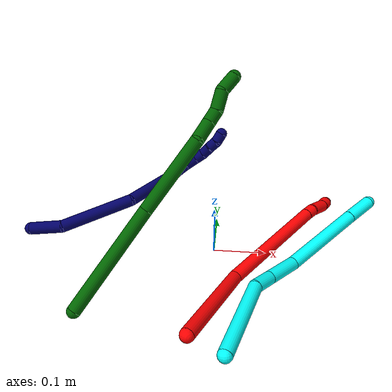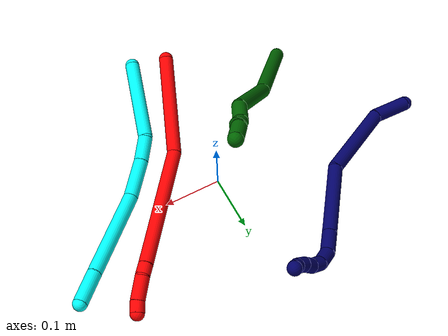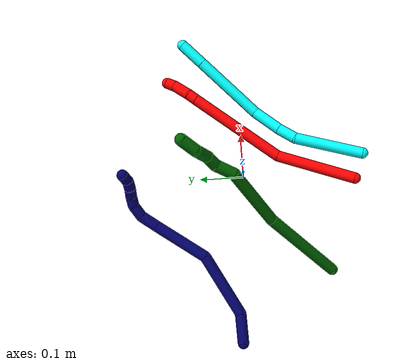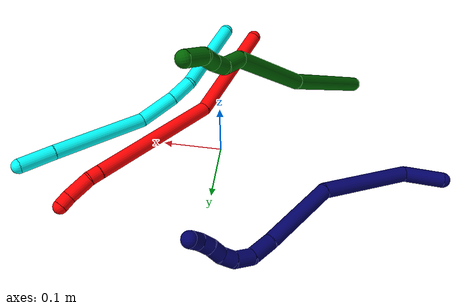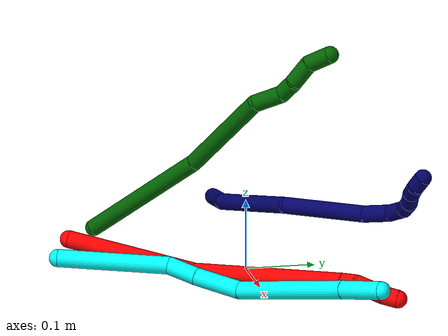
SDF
<sdf version="1.7">
 <world name="default">
  <model name="photoneo_s_sensor">
   <static>1</static>
   <pose>0 0 2 1.57079 1.57079 3.14159</pose>
   <link name="link">
    <inertial><mass>0.1</mass></inertial>
    <sensor name="sensor" type="depth">
     <update_rate>30</update_rate>
     <camera>
      <horizontal_fov>1.22</horizontal_fov>
      <image><width>1920</width><height>1200</height><format>B8G8R8</format></image>
      <clip><near>0.1</near><far>4</far></clip>
      <depth_camera><output>points</output></depth_camera>
     </camera>
     <plugin name="camera_plugin" filename="libgazebo_ros_depth_camera.so">
      <baseline>0.2</baseline>
      <alwaysOn>1</alwaysOn>
      <updateRate>0.0</updateRate>
      <cameraName>camera_ir</cameraName>
      <imageTopicName>/camera/color/image_raw</imageTopicName>
      <cameraInfoTopicName>/camera/color/camera_info</cameraInfoTopicName>
      <depthImageTopicName>/camera/depth/image_raw</depthImageTopicName>
      <depthImageCameraInfoTopicName>/camera/depth/camera_info</depthImageCameraInfoTopicName>
      <pointCloudTopicName>/camera/depth/points</pointCloudTopicName>
      <frameName>fr_optical</frameName>
      <pointCloudCutoff>0.1</pointCloudCutoff>
      <pointCloudCutoffMax>2.0</pointCloudCutoffMax>
      <distortionK1>0</distortionK1>
      <distortionK2>0</distortionK2>
      <distortionK3>0</distortionK3>
      <distortionT1>0</distortionT1>
      <distortionT2>0</distortionT2>
      <CxPrime>0</CxPrime>
      <Cx>0</Cx>
      <Cy>0</Cy>
      <focalLength>0</focalLength>
      <hackBaseline>0</hackBaseline>
     </plugin>
    </sensor>
   </link>
  </model>
  <model name="bin">
   <static>1</static>
   <link name="bottom">
    <collision name="collision-bottom">
     <pose>0 0 -0.01 0 -0 0</pose>
     <geometry><box><size>0.8 0.6 0.02</size></box></geometry>
     <surface>
      <friction><ode><mu>100</mu><mu2>100</mu2></ode></friction>
      <contact><collide_bitmask>65535</collide_bitmask></contact>
     </surface>
    </collision>
   </link>
   <link name="west_wall">
    <collision name="collision-west_wall">
     <pose>-0.41 0 0.1 0 -0 0</pose>
     <geometry><box><size>0.02 0.6 0.2</size></box></geometry>
     <surface>
      <friction><ode><mu>100</mu><mu2>100</mu2></ode></friction>
      <contact><collide_bitmask>65535</collide_bitmask></contact>
     </surface>
    </collision>
   </link>
   <link name="east_wall">
    <collision name="collision-east_wall">
     <pose>0.41 0 0.1 0 -0 0</pose>
     <geometry><box><size>0.02 0.6 0.2</size></box></geometry>
     <surface>
      <friction><ode><mu>100</mu><mu2>100</mu2></ode></friction>
      <contact><collide_bitmask>65535</collide_bitmask></contact>
     </surface>
    </collision>
   </link>
   <link name="south_wall">
    <collision name="collision-south_wall">
     <pose>0 -0.31 0.1 0 -0 0</pose>
     <geometry><box><size>0.8 0.02 0.2</size></box></geometry>
     <surface>
      <friction><ode><mu>100</mu><mu2>100</mu2></ode></friction>
      <contact><collide_bitmask>65535</collide_bitmask></contact>
     </surface>
    </collision>
   </link>
   <link name="north_wall">
    <collision name="collision-north_wall">
     <pose>0 0.31 0.1 0 -0 0</pose>
     <geometry><box><size>0.8 0.02 0.2</size></box></geometry>
     <surface>
      <friction><ode><mu>100</mu><mu2>100</mu2></ode></friction>
      <contact><collide_bitmask>65535</collide_bitmask></contact>
     </surface>
    </collision>
   </link>
  </model>
  <model name="2">
   <static>0</static>
   <link name="2">
    <collision name="collision-cylinder-e_1_1_4">
     <pose>0.029769 0.070137 0.052926 -0.924347 0.326663 -0.163825</pose>
     <geometry><cylinder><radius>0.0125</radius><length>0.185543</length></cylinder></geometry>
     <surface>
      <friction><ode><mu>1.16</mu><mu2>1.16</mu2><slip1>0</slip1><slip2>0</slip2></ode></friction>
      <contact><ode><kp>1e+06</kp><kd>1</kd><max_vel>0</max_vel><min_depth>0.001</min_depth></ode></contact>
     </surface>
    </collision>
    <visual name="visual-cylinder-e_1_1_4">
     <pose>0.029769 0.070137 0.052926 -0.924347 0.326663 -0.163825</pose>
     <geometry><cylinder><radius>0.0125</radius><length>0.185543</length></cylinder></geometry>
     <material><ambient>1 0 0 1</ambient></material>
    </visual>
    <collision name="collision-cylinder-e_2_4_5">
     <pose>0.124277 0.230007 0.137899 -1.22779 0.596791 -0.426917</pose>
     <geometry><cylinder><radius>0.0125</radius><length>0.230393</length></cylinder></geometry>
     <surface>
      <friction><ode><mu>1.16</mu><mu2>1.16</mu2><slip1>0</slip1><slip2>0</slip2></ode></friction>
      <contact><ode><kp>1e+06</kp><kd>1</kd><max_vel>0</max_vel><min_depth>0.001</min_depth></ode></contact>
     </surface>
    </collision>
    <visual name="visual-cylinder-e_2_4_5">
     <pose>0.124277 0.230007 0.137899 -1.22779 0.596791 -0.426917</pose>
     <geometry><cylinder><radius>0.0125</radius><length>0.230393</length></cylinder></geometry>
     <material><ambient>1 0 0 1</ambient></material>
    </visual>
    <collision name="collision-cylinder-e_3_5_6">
     <pose>0.194474 0.328233 0.172702 -1.25688 0.548622 -0.403446</pose>
     <geometry><cylinder><radius>0.0125</radius><length>0.020928</length></cylinder></geometry>
     <surface>
      <friction><ode><mu>1.16</mu><mu2>1.16</mu2><slip1>0</slip1><slip2>0</slip2></ode></friction>
      <contact><ode><kp>1e+06</kp><kd>1</kd><max_vel>0</max_vel><min_depth>0.001</min_depth></ode></contact>
     </surface>
    </collision>
    <visual name="visual-cylinder-e_3_5_6">
     <pose>0.194474 0.328233 0.172702 -1.25688 0.548622 -0.403446</pose>
     <geometry><cylinder><radius>0.0125</radius><length>0.020928</length></cylinder></geometry>
     <material><ambient>1 0 0 1</ambient></material>
    </visual>
    <collision name="collision-cylinder-e_4_6_7">
     <pose>0.205636 0.355736 0.182611 -1.21099 0.273804 -0.190154</pose>
     <geometry><cylinder><radius>0.0125</radius><length>0.042197</length></cylinder></geometry>
     <surface>
      <friction><ode><mu>1.16</mu><mu2>1.16</mu2><slip1>0</slip1><slip2>0</slip2></ode></friction>
      <contact><ode><kp>1e+06</kp><kd>1</kd><max_vel>0</max_vel><min_depth>0.001</min_depth></ode></contact>
     </surface>
    </collision>
    <visual name="visual-cylinder-e_4_6_7">
     <pose>0.205636 0.355736 0.182611 -1.21099 0.273804 -0.190154</pose>
     <geometry><cylinder><radius>0.0125</radius><length>0.042197</length></cylinder></geometry>
     <material><ambient>1 0 0 1</ambient></material>
    </visual>
    <collision name="collision-cylinder-e_5_7_2">
     <pose>0.214912 0.383137 0.194909 -1.02049 0.34807 -0.196168</pose>
     <geometry><cylinder><radius>0.0125</radius><length>0.020939</length></cylinder></geometry>
     <surface>
      <friction><ode><mu>1.16</mu><mu2>1.16</mu2><slip1>0</slip1><slip2>0</slip2></ode></friction>
      <contact><ode><kp>1e+06</kp><kd>1</kd><max_vel>0</max_vel><min_depth>0.001</min_depth></ode></contact>
     </surface>
    </collision>
    <visual name="visual-cylinder-e_5_7_2">
     <pose>0.214912 0.383137 0.194909 -1.02049 0.34807 -0.196168</pose>
     <geometry><cylinder><radius>0.0125</radius><length>0.020939</length></cylinder></geometry>
     <material><ambient>1 0 0 1</ambient></material>
    </visual>
    <collision name="collision-sphere-2">
     <pose>0.218483 0.391526 0.200056 0 -0 0</pose>
     <geometry><sphere><radius>0.0125</radius></sphere></geometry>
     <surface>
      <friction><ode><mu>1.16</mu><mu2>1.16</mu2><slip1>0</slip1><slip2>0</slip2></ode></friction>
      <contact><ode><kp>1e+06</kp><kd>1</kd><max_vel>0</max_vel><min_depth>0.001</min_depth></ode></contact>
     </surface>
    </collision>
    <visual name="visual-sphere-2">
     <pose>0.218483 0.391526 0.200056 0 -0 0</pose>
     <geometry><sphere><radius>0.0125</radius></sphere></geometry>
     <material><ambient>1 0 0 1</ambient></material>
    </visual>
    <collision name="collision-sphere-7">
     <pose>0.211341 0.374748 0.189763 0 -0 0</pose>
     <geometry><sphere><radius>0.0125</radius></sphere></geometry>
     <surface>
      <friction><ode><mu>1.16</mu><mu2>1.16</mu2><slip1>0</slip1><slip2>0</slip2></ode></friction>
      <contact><ode><kp>1e+06</kp><kd>1</kd><max_vel>0</max_vel><min_depth>0.001</min_depth></ode></contact>
     </surface>
    </collision>
    <visual name="visual-sphere-7">
     <pose>0.211341 0.374748 0.189763 0 -0 0</pose>
     <geometry><sphere><radius>0.0125</radius></sphere></geometry>
     <material><ambient>1 0 0 1</ambient></material>
    </visual>
    <collision name="collision-sphere-6">
     <pose>0.199931 0.336725 0.175459 0 -0 0</pose>
     <geometry><sphere><radius>0.0125</radius></sphere></geometry>
     <surface>
      <friction><ode><mu>1.16</mu><mu2>1.16</mu2><slip1>0</slip1><slip2>0</slip2></ode></friction>
      <contact><ode><kp>1e+06</kp><kd>1</kd><max_vel>0</max_vel><min_depth>0.001</min_depth></ode></contact>
     </surface>
    </collision>
    <visual name="visual-sphere-6">
     <pose>0.199931 0.336725 0.175459 0 -0 0</pose>
     <geometry><sphere><radius>0.0125</radius></sphere></geometry>
     <material><ambient>1 0 0 1</ambient></material>
    </visual>
    <collision name="collision-sphere-5">
     <pose>0.189017 0.31974 0.169945 0 -0 0</pose>
     <geometry><sphere><radius>0.0125</radius></sphere></geometry>
     <surface>
      <friction><ode><mu>1.16</mu><mu2>1.16</mu2><slip1>0</slip1><slip2>0</slip2></ode></friction>
      <contact><ode><kp>1e+06</kp><kd>1</kd><max_vel>0</max_vel><min_depth>0.001</min_depth></ode></contact>
     </surface>
    </collision>
    <visual name="visual-sphere-5">
     <pose>0.189017 0.31974 0.169945 0 -0 0</pose>
     <geometry><sphere><radius>0.0125</radius></sphere></geometry>
     <material><ambient>1 0 0 1</ambient></material>
    </visual>
    <collision name="collision-sphere-1">
     <geometry><sphere><radius>0.0125</radius></sphere></geometry>
     <surface>
      <friction><ode><mu>1.16</mu><mu2>1.16</mu2><slip1>0</slip1><slip2>0</slip2></ode></friction>
      <contact><ode><kp>1e+06</kp><kd>1</kd><max_vel>0</max_vel><min_depth>0.001</min_depth></ode></contact>
     </surface>
    </collision>
    <visual name="visual-sphere-1">
     <geometry><sphere><radius>0.0125</radius></sphere></geometry>
     <material><ambient>1 0 0 1</ambient></material>
    </visual>
    <collision name="collision-sphere-4">
     <pose>0.059538 0.140274 0.105853 0 -0 0</pose>
     <geometry><sphere><radius>0.0125</radius></sphere></geometry>
     <surface>
      <friction><ode><mu>1.16</mu><mu2>1.16</mu2><slip1>0</slip1><slip2>0</slip2></ode></friction>
      <contact><ode><kp>1e+06</kp><kd>1</kd><max_vel>0</max_vel><min_depth>0.001</min_depth></ode></contact>
     </surface>
    </collision>
    <visual name="visual-sphere-4">
     <pose>0.059538 0.140274 0.105853 0 -0 0</pose>
     <geometry><sphere><radius>0.0125</radius></sphere></geometry>
     <material><ambient>1 0 0 1</ambient></material>
    </visual>
    <inertial>
     <pose>0.102806 0.191816 0.113984 0 -0 0</pose>
     <mass>0.5</mass>
     <inertia>
      <ixx>0.000868</ixx>
      <ixy>0</ixy>
      <ixz>0</ixz>
      <iyy>0.000481</iyy>
      <iyz>0</iyz>
      <izz>-0.001957</izz>
     </inertia>
    </inertial>
   </link>
   <pose>-0.0254 -0.25074 0.049345 -2.05779 -1.03241 1.02697</pose>
  </model>
  <model name="3">
   <static>0</static>
   <link name="3">
    <collision name="collision-cylinder-e_1_1_4">
     <pose>0.021519 0.072475 0.020413 -1.29625 0.278378 -0.211383</pose>
     <geometry><cylinder><radius>0.0125</radius><length>0.156618</length></cylinder></geometry>
     <surface>
      <friction><ode><mu>1.16</mu><mu2>1.16</mu2><slip1>0</slip1><slip2>0</slip2></ode></friction>
      <contact><ode><kp>1e+06</kp><kd>1</kd><max_vel>0</max_vel><min_depth>0.001</min_depth></ode></contact>
     </surface>
    </collision>
    <visual name="visual-cylinder-e_1_1_4">
     <pose>0.021519 0.072475 0.020413 -1.29625 0.278378 -0.211383</pose>
     <geometry><cylinder><radius>0.0125</radius><length>0.156618</length></cylinder></geometry>
     <material><ambient>0.003922 1 0.996078 1</ambient></material>
    </visual>
    <collision name="collision-cylinder-e_2_4_5">
     <pose>0.055112 0.163714 0.040282 -1.59979 0.57154 -0.587416</pose>
     <geometry><cylinder><radius>0.0125</radius><length>0.04464</length></cylinder></geometry>
     <surface>
      <friction><ode><mu>1.16</mu><mu2>1.16</mu2><slip1>0</slip1><slip2>0</slip2></ode></friction>
      <contact><ode><kp>1e+06</kp><kd>1</kd><max_vel>0</max_vel><min_depth>0.001</min_depth></ode></contact>
     </surface>
    </collision>
    <visual name="visual-cylinder-e_2_4_5">
     <pose>0.055112 0.163714 0.040282 -1.59979 0.57154 -0.587416</pose>
     <geometry><cylinder><radius>0.0125</radius><length>0.04464</length></cylinder></geometry>
     <material><ambient>0.003922 1 0.996078 1</ambient></material>
    </visual>
    <collision name="collision-cylinder-e_3_5_6">
     <pose>0.089049 0.209823 0.041684 -1.49975 0.673253 -0.63014</pose>
     <geometry><cylinder><radius>0.0125</radius><length>0.070129</length></cylinder></geometry>
     <surface>
      <friction><ode><mu>1.16</mu><mu2>1.16</mu2><slip1>0</slip1><slip2>0</slip2></ode></friction>
      <contact><ode><kp>1e+06</kp><kd>1</kd><max_vel>0</max_vel><min_depth>0.001</min_depth></ode></contact>
     </surface>
    </collision>
    <visual name="visual-cylinder-e_3_5_6">
     <pose>0.089049 0.209823 0.041684 -1.49975 0.673253 -0.63014</pose>
     <geometry><cylinder><radius>0.0125</radius><length>0.070129</length></cylinder></geometry>
     <material><ambient>0.003922 1 0.996078 1</ambient></material>
    </visual>
    <collision name="collision-cylinder-e_4_6_7">
     <pose>0.170368 0.290165 0.070022 -1.10876 0.787493 -0.503526</pose>
     <geometry><cylinder><radius>0.0125</radius><length>0.167812</length></cylinder></geometry>
     <surface>
      <friction><ode><mu>1.16</mu><mu2>1.16</mu2><slip1>0</slip1><slip2>0</slip2></ode></friction>
      <contact><ode><kp>1e+06</kp><kd>1</kd><max_vel>0</max_vel><min_depth>0.001</min_depth></ode></contact>
     </surface>
    </collision>
    <visual name="visual-cylinder-e_4_6_7">
     <pose>0.170368 0.290165 0.070022 -1.10876 0.787493 -0.503526</pose>
     <geometry><cylinder><radius>0.0125</radius><length>0.167812</length></cylinder></geometry>
     <material><ambient>0.003922 1 0.996078 1</ambient></material>
    </visual>
    <collision name="collision-cylinder-e_5_7_2">
     <pose>0.25139 0.362719 0.105165 -1.15004 0.788743 -0.526885</pose>
     <geometry><cylinder><radius>0.0125</radius><length>0.060801</length></cylinder></geometry>
     <surface>
      <friction><ode><mu>1.16</mu><mu2>1.16</mu2><slip1>0</slip1><slip2>0</slip2></ode></friction>
      <contact><ode><kp>1e+06</kp><kd>1</kd><max_vel>0</max_vel><min_depth>0.001</min_depth></ode></contact>
     </surface>
    </collision>
    <visual name="visual-cylinder-e_5_7_2">
     <pose>0.25139 0.362719 0.105165 -1.15004 0.788743 -0.526885</pose>
     <geometry><cylinder><radius>0.0125</radius><length>0.060801</length></cylinder></geometry>
     <material><ambient>0.003922 1 0.996078 1</ambient></material>
    </visual>
    <collision name="collision-sphere-2">
     <pose>0.272958 0.382275 0.113916 0 -0 0</pose>
     <geometry><sphere><radius>0.0125</radius></sphere></geometry>
     <surface>
      <friction><ode><mu>1.16</mu><mu2>1.16</mu2><slip1>0</slip1><slip2>0</slip2></ode></friction>
      <contact><ode><kp>1e+06</kp><kd>1</kd><max_vel>0</max_vel><min_depth>0.001</min_depth></ode></contact>
     </surface>
    </collision>
    <visual name="visual-sphere-2">
     <pose>0.272958 0.382275 0.113916 0 -0 0</pose>
     <geometry><sphere><radius>0.0125</radius></sphere></geometry>
     <material><ambient>0.003922 1 0.996078 1</ambient></material>
    </visual>
    <collision name="collision-sphere-7">
     <pose>0.229822 0.343164 0.096414 0 -0 0</pose>
     <geometry><sphere><radius>0.0125</radius></sphere></geometry>
     <surface>
      <friction><ode><mu>1.16</mu><mu2>1.16</mu2><slip1>0</slip1><slip2>0</slip2></ode></friction>
      <contact><ode><kp>1e+06</kp><kd>1</kd><max_vel>0</max_vel><min_depth>0.001</min_depth></ode></contact>
     </surface>
    </collision>
    <visual name="visual-sphere-7">
     <pose>0.229822 0.343164 0.096414 0 -0 0</pose>
     <geometry><sphere><radius>0.0125</radius></sphere></geometry>
     <material><ambient>0.003922 1 0.996078 1</ambient></material>
    </visual>
    <collision name="collision-sphere-6">
     <pose>0.110913 0.237167 0.04363 0 -0 0</pose>
     <geometry><sphere><radius>0.0125</radius></sphere></geometry>
     <surface>
      <friction><ode><mu>1.16</mu><mu2>1.16</mu2><slip1>0</slip1><slip2>0</slip2></ode></friction>
      <contact><ode><kp>1e+06</kp><kd>1</kd><max_vel>0</max_vel><min_depth>0.001</min_depth></ode></contact>
     </surface>
    </collision>
    <visual name="visual-sphere-6">
     <pose>0.110913 0.237167 0.04363 0 -0 0</pose>
     <geometry><sphere><radius>0.0125</radius></sphere></geometry>
     <material><ambient>0.003922 1 0.996078 1</ambient></material>
    </visual>
    <collision name="collision-sphere-5">
     <pose>0.067185 0.182479 0.039738 0 -0 0</pose>
     <geometry><sphere><radius>0.0125</radius></sphere></geometry>
     <surface>
      <friction><ode><mu>1.16</mu><mu2>1.16</mu2><slip1>0</slip1><slip2>0</slip2></ode></friction>
      <contact><ode><kp>1e+06</kp><kd>1</kd><max_vel>0</max_vel><min_depth>0.001</min_depth></ode></contact>
     </surface>
    </collision>
    <visual name="visual-sphere-5">
     <pose>0.067185 0.182479 0.039738 0 -0 0</pose>
     <geometry><sphere><radius>0.0125</radius></sphere></geometry>
     <material><ambient>0.003922 1 0.996078 1</ambient></material>
    </visual>
    <collision name="collision-sphere-1">
     <geometry><sphere><radius>0.0125</radius></sphere></geometry>
     <surface>
      <friction><ode><mu>1.16</mu><mu2>1.16</mu2><slip1>0</slip1><slip2>0</slip2></ode></friction>
      <contact><ode><kp>1e+06</kp><kd>1</kd><max_vel>0</max_vel><min_depth>0.001</min_depth></ode></contact>
     </surface>
    </collision>
    <visual name="visual-sphere-1">
     <geometry><sphere><radius>0.0125</radius></sphere></geometry>
     <material><ambient>0.003922 1 0.996078 1</ambient></material>
    </visual>
    <collision name="collision-sphere-4">
     <pose>0.043038 0.144949 0.040826 0 -0 0</pose>
     <geometry><sphere><radius>0.0125</radius></sphere></geometry>
     <surface>
      <friction><ode><mu>1.16</mu><mu2>1.16</mu2><slip1>0</slip1><slip2>0</slip2></ode></friction>
      <contact><ode><kp>1e+06</kp><kd>1</kd><max_vel>0</max_vel><min_depth>0.001</min_depth></ode></contact>
     </surface>
    </collision>
    <visual name="visual-sphere-4">
     <pose>0.043038 0.144949 0.040826 0 -0 0</pose>
     <geometry><sphere><radius>0.0125</radius></sphere></geometry>
     <material><ambient>0.003922 1 0.996078 1</ambient></material>
    </visual>
    <inertial>
     <pose>0.1119 0.208241 0.052126 0 -0 0</pose>
     <mass>0.5</mass>
     <inertia>
      <ixx>0.000386</ixx>
      <ixy>0</ixy>
      <ixz>0</ixz>
      <iyy>0.000215</iyy>
      <iyz>0</iyz>
      <izz>-0.001005</izz>
     </inertia>
    </inertial>
   </link>
   <pose>0.033082 -0.274042 0.038686 -0.352175 -0.123339 -0.008142</pose>
  </model>
  <model name="6">
   <static>0</static>
   <link name="6">
    <collision name="collision-cylinder-e_1_1_4">
     <pose>0.048731 0.051702 -0.075732 -2.54257 0.488474 -1.35803</pose>
     <geometry><cylinder><radius>0.0125</radius><length>0.207684</length></cylinder></geometry>
     <surface>
      <friction><ode><mu>1.16</mu><mu2>1.16</mu2><slip1>0</slip1><slip2>0</slip2></ode></friction>
      <contact><ode><kp>1e+06</kp><kd>1</kd><max_vel>0</max_vel><min_depth>0.001</min_depth></ode></contact>
     </surface>
    </collision>
    <visual name="visual-cylinder-e_1_1_4">
     <pose>0.048731 0.051702 -0.075732 -2.54257 0.488474 -1.35803</pose>
     <geometry><cylinder><radius>0.0125</radius><length>0.207684</length></cylinder></geometry>
     <material><ambient>0 0.392157 0.003922 1</ambient></material>
    </visual>
    <collision name="collision-cylinder-e_2_4_5">
     <pose>0.14391 0.131356 -0.204411 -2.65586 0.659809 -1.88887</pose>
     <geometry><cylinder><radius>0.0125</radius><length>0.151554</length></cylinder></geometry>
     <surface>
      <friction><ode><mu>1.16</mu><mu2>1.16</mu2><slip1>0</slip1><slip2>0</slip2></ode></friction>
      <contact><ode><kp>1e+06</kp><kd>1</kd><max_vel>0</max_vel><min_depth>0.001</min_depth></ode></contact>
     </surface>
    </collision>
    <visual name="visual-cylinder-e_2_4_5">
     <pose>0.14391 0.131356 -0.204411 -2.65586 0.659809 -1.88887</pose>
     <geometry><cylinder><radius>0.0125</radius><length>0.151554</length></cylinder></geometry>
     <material><ambient>0 0.392157 0.003922 1</ambient></material>
    </visual>
    <collision name="collision-cylinder-e_3_5_6">
     <pose>0.194911 0.173535 -0.272393 -2.38383 0.216456 -0.532859</pose>
     <geometry><cylinder><radius>0.0125</radius><length>0.042388</length></cylinder></geometry>
     <surface>
      <friction><ode><mu>1.16</mu><mu2>1.16</mu2><slip1>0</slip1><slip2>0</slip2></ode></friction>
      <contact><ode><kp>1e+06</kp><kd>1</kd><max_vel>0</max_vel><min_depth>0.001</min_depth></ode></contact>
     </surface>
    </collision>
    <visual name="visual-cylinder-e_3_5_6">
     <pose>0.194911 0.173535 -0.272393 -2.38383 0.216456 -0.532859</pose>
     <geometry><cylinder><radius>0.0125</radius><length>0.042388</length></cylinder></geometry>
     <material><ambient>0 0.392157 0.003922 1</ambient></material>
    </visual>
    <collision name="collision-cylinder-e_4_6_7">
     <pose>0.207418 0.193204 -0.296098 -2.581 0.660653 -1.7448</pose>
     <geometry><cylinder><radius>0.0125</radius><length>0.025927</length></cylinder></geometry>
     <surface>
      <friction><ode><mu>1.16</mu><mu2>1.16</mu2><slip1>0</slip1><slip2>0</slip2></ode></friction>
      <contact><ode><kp>1e+06</kp><kd>1</kd><max_vel>0</max_vel><min_depth>0.001</min_depth></ode></contact>
     </surface>
    </collision>
    <visual name="visual-cylinder-e_4_6_7">
     <pose>0.207418 0.193204 -0.296098 -2.581 0.660653 -1.7448</pose>
     <geometry><cylinder><radius>0.0125</radius><length>0.025927</length></cylinder></geometry>
     <material><ambient>0 0.392157 0.003922 1</ambient></material>
    </visual>
    <collision name="collision-cylinder-e_5_7_8">
     <pose>0.227239 0.209728 -0.312587 -2.18528 0.718762 -1.2545</pose>
     <geometry><cylinder><radius>0.0125</radius><length>0.036043</length></cylinder></geometry>
     <surface>
      <friction><ode><mu>1.16</mu><mu2>1.16</mu2><slip1>0</slip1><slip2>0</slip2></ode></friction>
      <contact><ode><kp>1e+06</kp><kd>1</kd><max_vel>0</max_vel><min_depth>0.001</min_depth></ode></contact>
     </surface>
    </collision>
    <visual name="visual-cylinder-e_5_7_8">
     <pose>0.227239 0.209728 -0.312587 -2.18528 0.718762 -1.2545</pose>
     <geometry><cylinder><radius>0.0125</radius><length>0.036043</length></cylinder></geometry>
     <material><ambient>0 0.392157 0.003922 1</ambient></material>
    </visual>
    <collision name="collision-cylinder-e_6_8_2">
     <pose>0.245043 0.230335 -0.334737 -2.55499 0.332293 -1.01374</pose>
     <geometry><cylinder><radius>0.0125</radius><length>0.036404</length></cylinder></geometry>
     <surface>
      <friction><ode><mu>1.16</mu><mu2>1.16</mu2><slip1>0</slip1><slip2>0</slip2></ode></friction>
      <contact><ode><kp>1e+06</kp><kd>1</kd><max_vel>0</max_vel><min_depth>0.001</min_depth></ode></contact>
     </surface>
    </collision>
    <visual name="visual-cylinder-e_6_8_2">
     <pose>0.245043 0.230335 -0.334737 -2.55499 0.332293 -1.01374</pose>
     <geometry><cylinder><radius>0.0125</radius><length>0.036404</length></cylinder></geometry>
     <material><ambient>0 0.392157 0.003922 1</ambient></material>
    </visual>
    <collision name="collision-sphere-2">
     <pose>0.25098 0.239859 -0.349067 0 -0 0</pose>
     <geometry><sphere><radius>0.0125</radius></sphere></geometry>
     <surface>
      <friction><ode><mu>1.16</mu><mu2>1.16</mu2><slip1>0</slip1><slip2>0</slip2></ode></friction>
      <contact><ode><kp>1e+06</kp><kd>1</kd><max_vel>0</max_vel><min_depth>0.001</min_depth></ode></contact>
     </surface>
    </collision>
    <visual name="visual-sphere-2">
     <pose>0.25098 0.239859 -0.349067 0 -0 0</pose>
     <geometry><sphere><radius>0.0125</radius></sphere></geometry>
     <material><ambient>0 0.392157 0.003922 1</ambient></material>
    </visual>
    <collision name="collision-sphere-4">
     <pose>0.097461 0.103404 -0.151464 0 -0 0</pose>
     <geometry><sphere><radius>0.0125</radius></sphere></geometry>
     <surface>
      <friction><ode><mu>1.16</mu><mu2>1.16</mu2><slip1>0</slip1><slip2>0</slip2></ode></friction>
      <contact><ode><kp>1e+06</kp><kd>1</kd><max_vel>0</max_vel><min_depth>0.001</min_depth></ode></contact>
     </surface>
    </collision>
    <visual name="visual-sphere-4">
     <pose>0.097461 0.103404 -0.151464 0 -0 0</pose>
     <geometry><sphere><radius>0.0125</radius></sphere></geometry>
     <material><ambient>0 0.392157 0.003922 1</ambient></material>
    </visual>
    <collision name="collision-sphere-1">
     <geometry><sphere><radius>0.0125</radius></sphere></geometry>
     <surface>
      <friction><ode><mu>1.16</mu><mu2>1.16</mu2><slip1>0</slip1><slip2>0</slip2></ode></friction>
      <contact><ode><kp>1e+06</kp><kd>1</kd><max_vel>0</max_vel><min_depth>0.001</min_depth></ode></contact>
     </surface>
    </collision>
    <visual name="visual-sphere-1">
     <geometry><sphere><radius>0.0125</radius></sphere></geometry>
     <material><ambient>0 0.392157 0.003922 1</ambient></material>
    </visual>
    <collision name="collision-sphere-8">
     <pose>0.239105 0.22081 -0.320407 0 -0 0</pose>
     <geometry><sphere><radius>0.0125</radius></sphere></geometry>
     <surface>
      <friction><ode><mu>1.16</mu><mu2>1.16</mu2><slip1>0</slip1><slip2>0</slip2></ode></friction>
      <contact><ode><kp>1e+06</kp><kd>1</kd><max_vel>0</max_vel><min_depth>0.001</min_depth></ode></contact>
     </surface>
    </collision>
    <visual name="visual-sphere-8">
     <pose>0.239105 0.22081 -0.320407 0 -0 0</pose>
     <geometry><sphere><radius>0.0125</radius></sphere></geometry>
     <material><ambient>0 0.392157 0.003922 1</ambient></material>
    </visual>
    <collision name="collision-sphere-5">
     <pose>0.190359 0.159308 -0.257358 0 -0 0</pose>
     <geometry><sphere><radius>0.0125</radius></sphere></geometry>
     <surface>
      <friction><ode><mu>1.16</mu><mu2>1.16</mu2><slip1>0</slip1><slip2>0</slip2></ode></friction>
      <contact><ode><kp>1e+06</kp><kd>1</kd><max_vel>0</max_vel><min_depth>0.001</min_depth></ode></contact>
     </surface>
    </collision>
    <visual name="visual-sphere-5">
     <pose>0.190359 0.159308 -0.257358 0 -0 0</pose>
     <geometry><sphere><radius>0.0125</radius></sphere></geometry>
     <material><ambient>0 0.392157 0.003922 1</ambient></material>
    </visual>
    <collision name="collision-sphere-6">
     <pose>0.199463 0.187762 -0.287429 0 -0 0</pose>
     <geometry><sphere><radius>0.0125</radius></sphere></geometry>
     <surface>
      <friction><ode><mu>1.16</mu><mu2>1.16</mu2><slip1>0</slip1><slip2>0</slip2></ode></friction>
      <contact><ode><kp>1e+06</kp><kd>1</kd><max_vel>0</max_vel><min_depth>0.001</min_depth></ode></contact>
     </surface>
    </collision>
    <visual name="visual-sphere-6">
     <pose>0.199463 0.187762 -0.287429 0 -0 0</pose>
     <geometry><sphere><radius>0.0125</radius></sphere></geometry>
     <material><ambient>0 0.392157 0.003922 1</ambient></material>
    </visual>
    <collision name="collision-sphere-7">
     <pose>0.215372 0.198646 -0.304767 0 -0 0</pose>
     <geometry><sphere><radius>0.0125</radius></sphere></geometry>
     <surface>
      <friction><ode><mu>1.16</mu><mu2>1.16</mu2><slip1>0</slip1><slip2>0</slip2></ode></friction>
      <contact><ode><kp>1e+06</kp><kd>1</kd><max_vel>0</max_vel><min_depth>0.001</min_depth></ode></contact>
     </surface>
    </collision>
    <visual name="visual-sphere-7">
     <pose>0.215372 0.198646 -0.304767 0 -0 0</pose>
     <geometry><sphere><radius>0.0125</radius></sphere></geometry>
     <material><ambient>0 0.392157 0.003922 1</ambient></material>
    </visual>
    <inertial>
     <pose>0.125363 0.117909 -0.178766 0 -0 0</pose>
     <mass>0.5</mass>
     <inertia>
      <ixx>-0.00079</ixx>
      <ixy>0</ixy>
      <ixz>0</ixz>
      <iyy>-0.000646</iyy>
      <iyz>0</iyz>
      <izz>-0.001069</izz>
     </inertia>
    </inertial>
   </link>
   <pose>-0.224178 -0.187051 0.011495 1.51785 -1.31288 -1.07895</pose>
  </model>
  <model name="7">
   <static>0</static>
   <link name="7">
    <collision name="collision-cylinder-e_1_1_4">
     <pose>-0.002018 -0.004856 -0.032349 2.99259 -0.061602 -0.78295</pose>
     <geometry><cylinder><radius>0.0125</radius><length>0.065547</length></cylinder></geometry>
     <surface>
      <friction><ode><mu>1.16</mu><mu2>1.16</mu2><slip1>0</slip1><slip2>0</slip2></ode></friction>
      <contact><ode><kp>1e+06</kp><kd>1</kd><max_vel>0</max_vel><min_depth>0.001</min_depth></ode></contact>
     </surface>
    </collision>
    <visual name="visual-cylinder-e_1_1_4">
     <pose>-0.002018 -0.004856 -0.032349 2.99259 -0.061602 -0.78295</pose>
     <geometry><cylinder><radius>0.0125</radius><length>0.065547</length></cylinder></geometry>
     <material><ambient>0.003922 0 0.403922 1</ambient></material>
    </visual>
    <collision name="collision-cylinder-e_2_4_5">
     <pose>0.018946 -0.000955 -0.135038 -3.01773 0.313521 -2.39382</pose>
     <geometry><cylinder><radius>0.0125</radius><length>0.149032</length></cylinder></geometry>
     <surface>
      <friction><ode><mu>1.16</mu><mu2>1.16</mu2><slip1>0</slip1><slip2>0</slip2></ode></friction>
      <contact><ode><kp>1e+06</kp><kd>1</kd><max_vel>0</max_vel><min_depth>0.001</min_depth></ode></contact>
     </surface>
    </collision>
    <visual name="visual-cylinder-e_2_4_5">
     <pose>0.018946 -0.000955 -0.135038 -3.01773 0.313521 -2.39382</pose>
     <geometry><cylinder><radius>0.0125</radius><length>0.149032</length></cylinder></geometry>
     <material><ambient>0.003922 0 0.403922 1</ambient></material>
    </visual>
    <collision name="collision-cylinder-e_3_5_6">
     <pose>0.074263 0.038481 -0.251085 -2.55045 0.531103 -1.4581</pose>
     <geometry><cylinder><radius>0.0125</radius><length>0.127683</length></cylinder></geometry>
     <surface>
      <friction><ode><mu>1.16</mu><mu2>1.16</mu2><slip1>0</slip1><slip2>0</slip2></ode></friction>
      <contact><ode><kp>1e+06</kp><kd>1</kd><max_vel>0</max_vel><min_depth>0.001</min_depth></ode></contact>
     </surface>
    </collision>
    <visual name="visual-cylinder-e_3_5_6">
     <pose>0.074263 0.038481 -0.251085 -2.55045 0.531103 -1.4581</pose>
     <geometry><cylinder><radius>0.0125</radius><length>0.127683</length></cylinder></geometry>
     <material><ambient>0.003922 0 0.403922 1</ambient></material>
    </visual>
    <collision name="collision-cylinder-e_4_6_7">
     <pose>0.11863 0.076564 -0.311592 -2.67774 0.628651 -1.88505</pose>
     <geometry><cylinder><radius>0.0125</radius><length>0.040924</length></cylinder></geometry>
     <surface>
      <friction><ode><mu>1.16</mu><mu2>1.16</mu2><slip1>0</slip1><slip2>0</slip2></ode></friction>
      <contact><ode><kp>1e+06</kp><kd>1</kd><max_vel>0</max_vel><min_depth>0.001</min_depth></ode></contact>
     </surface>
    </collision>
    <visual name="visual-cylinder-e_4_6_7">
     <pose>0.11863 0.076564 -0.311592 -2.67774 0.628651 -1.88505</pose>
     <geometry><cylinder><radius>0.0125</radius><length>0.040924</length></cylinder></geometry>
     <material><ambient>0.003922 0 0.403922 1</ambient></material>
    </visual>
    <collision name="collision-cylinder-e_5_7_8">
     <pose>0.137963 0.083824 -0.339473 3.13051 0.50902 3.09898</pose>
     <geometry><cylinder><radius>0.0125</radius><length>0.02996</length></cylinder></geometry>
     <surface>
      <friction><ode><mu>1.16</mu><mu2>1.16</mu2><slip1>0</slip1><slip2>0</slip2></ode></friction>
      <contact><ode><kp>1e+06</kp><kd>1</kd><max_vel>0</max_vel><min_depth>0.001</min_depth></ode></contact>
     </surface>
    </collision>
    <visual name="visual-cylinder-e_5_7_8">
     <pose>0.137963 0.083824 -0.339473 3.13051 0.50902 3.09898</pose>
     <geometry><cylinder><radius>0.0125</radius><length>0.02996</length></cylinder></geometry>
     <material><ambient>0.003922 0 0.403922 1</ambient></material>
    </visual>
    <collision name="collision-cylinder-e_6_8_9">
     <pose>0.149022 0.078785 -0.362207 2.67239 0.33429 1.22939</pose>
     <geometry><cylinder><radius>0.0125</radius><length>0.022916</length></cylinder></geometry>
     <surface>
      <friction><ode><mu>1.16</mu><mu2>1.16</mu2><slip1>0</slip1><slip2>0</slip2></ode></friction>
      <contact><ode><kp>1e+06</kp><kd>1</kd><max_vel>0</max_vel><min_depth>0.001</min_depth></ode></contact>
     </surface>
    </collision>
    <visual name="visual-cylinder-e_6_8_9">
     <pose>0.149022 0.078785 -0.362207 2.67239 0.33429 1.22939</pose>
     <geometry><cylinder><radius>0.0125</radius><length>0.022916</length></cylinder></geometry>
     <material><ambient>0.003922 0 0.403922 1</ambient></material>
    </visual>
    <collision name="collision-cylinder-e_7_9_10">
     <pose>0.156971 0.066461 -0.3793 2.3568 0.379227 0.868428</pose>
     <geometry><cylinder><radius>0.0125</radius><length>0.022634</length></cylinder></geometry>
     <surface>
      <friction><ode><mu>1.16</mu><mu2>1.16</mu2><slip1>0</slip1><slip2>0</slip2></ode></friction>
      <contact><ode><kp>1e+06</kp><kd>1</kd><max_vel>0</max_vel><min_depth>0.001</min_depth></ode></contact>
     </surface>
    </collision>
    <visual name="visual-cylinder-e_7_9_10">
     <pose>0.156971 0.066461 -0.3793 2.3568 0.379227 0.868428</pose>
     <geometry><cylinder><radius>0.0125</radius><length>0.022634</length></cylinder></geometry>
     <material><ambient>0.003922 0 0.403922 1</ambient></material>
    </visual>
    <collision name="collision-cylinder-e_8_10_11">
     <pose>0.165244 0.053949 -0.394444 2.55842 0.416432 1.22671</pose>
     <geometry><cylinder><radius>0.0125</radius><length>0.020189</length></cylinder></geometry>
     <surface>
      <friction><ode><mu>1.16</mu><mu2>1.16</mu2><slip1>0</slip1><slip2>0</slip2></ode></friction>
      <contact><ode><kp>1e+06</kp><kd>1</kd><max_vel>0</max_vel><min_depth>0.001</min_depth></ode></contact>
     </surface>
    </collision>
    <visual name="visual-cylinder-e_8_10_11">
     <pose>0.165244 0.053949 -0.394444 2.55842 0.416432 1.22671</pose>
     <geometry><cylinder><radius>0.0125</radius><length>0.020189</length></cylinder></geometry>
     <material><ambient>0.003922 0 0.403922 1</ambient></material>
    </visual>
    <collision name="collision-cylinder-e_9_11_2">
     <pose>0.176907 0.045007 -0.408405 2.58899 0.80081 1.96111</pose>
     <geometry><cylinder><radius>0.0125</radius><length>0.021116</length></cylinder></geometry>
     <surface>
      <friction><ode><mu>1.16</mu><mu2>1.16</mu2><slip1>0</slip1><slip2>0</slip2></ode></friction>
      <contact><ode><kp>1e+06</kp><kd>1</kd><max_vel>0</max_vel><min_depth>0.001</min_depth></ode></contact>
     </surface>
    </collision>
    <visual name="visual-cylinder-e_9_11_2">
     <pose>0.176907 0.045007 -0.408405 2.58899 0.80081 1.96111</pose>
     <geometry><cylinder><radius>0.0125</radius><length>0.021116</length></cylinder></geometry>
     <material><ambient>0.003922 0 0.403922 1</ambient></material>
    </visual>
    <collision name="collision-sphere-2">
     <pose>0.184486 0.041149 -0.414661 0 -0 0</pose>
     <geometry><sphere><radius>0.0125</radius></sphere></geometry>
     <surface>
      <friction><ode><mu>1.16</mu><mu2>1.16</mu2><slip1>0</slip1><slip2>0</slip2></ode></friction>
      <contact><ode><kp>1e+06</kp><kd>1</kd><max_vel>0</max_vel><min_depth>0.001</min_depth></ode></contact>
     </surface>
    </collision>
    <visual name="visual-sphere-2">
     <pose>0.184486 0.041149 -0.414661 0 -0 0</pose>
     <geometry><sphere><radius>0.0125</radius></sphere></geometry>
     <material><ambient>0.003922 0 0.403922 1</ambient></material>
    </visual>
    <collision name="collision-sphere-11">
     <pose>0.169327 0.048865 -0.402149 0 -0 0</pose>
     <geometry><sphere><radius>0.0125</radius></sphere></geometry>
     <surface>
      <friction><ode><mu>1.16</mu><mu2>1.16</mu2><slip1>0</slip1><slip2>0</slip2></ode></friction>
      <contact><ode><kp>1e+06</kp><kd>1</kd><max_vel>0</max_vel><min_depth>0.001</min_depth></ode></contact>
     </surface>
    </collision>
    <visual name="visual-sphere-11">
     <pose>0.169327 0.048865 -0.402149 0 -0 0</pose>
     <geometry><sphere><radius>0.0125</radius></sphere></geometry>
     <material><ambient>0.003922 0 0.403922 1</ambient></material>
    </visual>
    <collision name="collision-sphere-10">
     <pose>0.161161 0.059032 -0.386738 0 -0 0</pose>
     <geometry><sphere><radius>0.0125</radius></sphere></geometry>
     <surface>
      <friction><ode><mu>1.16</mu><mu2>1.16</mu2><slip1>0</slip1><slip2>0</slip2></ode></friction>
      <contact><ode><kp>1e+06</kp><kd>1</kd><max_vel>0</max_vel><min_depth>0.001</min_depth></ode></contact>
     </surface>
    </collision>
    <visual name="visual-sphere-10">
     <pose>0.161161 0.059032 -0.386738 0 -0 0</pose>
     <geometry><sphere><radius>0.0125</radius></sphere></geometry>
     <material><ambient>0.003922 0 0.403922 1</ambient></material>
    </visual>
    <collision name="collision-sphere-9">
     <pose>0.152782 0.073891 -0.371861 0 -0 0</pose>
     <geometry><sphere><radius>0.0125</radius></sphere></geometry>
     <surface>
      <friction><ode><mu>1.16</mu><mu2>1.16</mu2><slip1>0</slip1><slip2>0</slip2></ode></friction>
      <contact><ode><kp>1e+06</kp><kd>1</kd><max_vel>0</max_vel><min_depth>0.001</min_depth></ode></contact>
     </surface>
    </collision>
    <visual name="visual-sphere-9">
     <pose>0.152782 0.073891 -0.371861 0 -0 0</pose>
     <geometry><sphere><radius>0.0125</radius></sphere></geometry>
     <material><ambient>0.003922 0 0.403922 1</ambient></material>
    </visual>
    <collision name="collision-sphere-4">
     <pose>-0.004035 -0.009712 -0.064698 0 -0 0</pose>
     <geometry><sphere><radius>0.0125</radius></sphere></geometry>
     <surface>
      <friction><ode><mu>1.16</mu><mu2>1.16</mu2><slip1>0</slip1><slip2>0</slip2></ode></friction>
      <contact><ode><kp>1e+06</kp><kd>1</kd><max_vel>0</max_vel><min_depth>0.001</min_depth></ode></contact>
     </surface>
    </collision>
    <visual name="visual-sphere-4">
     <pose>-0.004035 -0.009712 -0.064698 0 -0 0</pose>
     <geometry><sphere><radius>0.0125</radius></sphere></geometry>
     <material><ambient>0.003922 0 0.403922 1</ambient></material>
    </visual>
    <collision name="collision-sphere-1">
     <geometry><sphere><radius>0.0125</radius></sphere></geometry>
     <surface>
      <friction><ode><mu>1.16</mu><mu2>1.16</mu2><slip1>0</slip1><slip2>0</slip2></ode></friction>
      <contact><ode><kp>1e+06</kp><kd>1</kd><max_vel>0</max_vel><min_depth>0.001</min_depth></ode></contact>
     </surface>
    </collision>
    <visual name="visual-sphere-1">
     <geometry><sphere><radius>0.0125</radius></sphere></geometry>
     <material><ambient>0.003922 0 0.403922 1</ambient></material>
    </visual>
    <collision name="collision-sphere-8">
     <pose>0.145263 0.083679 -0.352554 0 -0 0</pose>
     <geometry><sphere><radius>0.0125</radius></sphere></geometry>
     <surface>
      <friction><ode><mu>1.16</mu><mu2>1.16</mu2><slip1>0</slip1><slip2>0</slip2></ode></friction>
      <contact><ode><kp>1e+06</kp><kd>1</kd><max_vel>0</max_vel><min_depth>0.001</min_depth></ode></contact>
     </surface>
    </collision>
    <visual name="visual-sphere-8">
     <pose>0.145263 0.083679 -0.352554 0 -0 0</pose>
     <geometry><sphere><radius>0.0125</radius></sphere></geometry>
     <material><ambient>0.003922 0 0.403922 1</ambient></material>
    </visual>
    <collision name="collision-sphere-5">
     <pose>0.041928 0.007803 -0.205379 0 -0 0</pose>
     <geometry><sphere><radius>0.0125</radius></sphere></geometry>
     <surface>
      <friction><ode><mu>1.16</mu><mu2>1.16</mu2><slip1>0</slip1><slip2>0</slip2></ode></friction>
      <contact><ode><kp>1e+06</kp><kd>1</kd><max_vel>0</max_vel><min_depth>0.001</min_depth></ode></contact>
     </surface>
    </collision>
    <visual name="visual-sphere-5">
     <pose>0.041928 0.007803 -0.205379 0 -0 0</pose>
     <geometry><sphere><radius>0.0125</radius></sphere></geometry>
     <material><ambient>0.003922 0 0.403922 1</ambient></material>
    </visual>
    <collision name="collision-sphere-6">
     <pose>0.106597 0.06916 -0.296791 0 -0 0</pose>
     <geometry><sphere><radius>0.0125</radius></sphere></geometry>
     <surface>
      <friction><ode><mu>1.16</mu><mu2>1.16</mu2><slip1>0</slip1><slip2>0</slip2></ode></friction>
      <contact><ode><kp>1e+06</kp><kd>1</kd><max_vel>0</max_vel><min_depth>0.001</min_depth></ode></contact>
     </surface>
    </collision>
    <visual name="visual-sphere-6">
     <pose>0.106597 0.06916 -0.296791 0 -0 0</pose>
     <geometry><sphere><radius>0.0125</radius></sphere></geometry>
     <material><ambient>0.003922 0 0.403922 1</ambient></material>
    </visual>
    <collision name="collision-sphere-7">
     <pose>0.130663 0.083969 -0.326393 0 -0 0</pose>
     <geometry><sphere><radius>0.0125</radius></sphere></geometry>
     <surface>
      <friction><ode><mu>1.16</mu><mu2>1.16</mu2><slip1>0</slip1><slip2>0</slip2></ode></friction>
      <contact><ode><kp>1e+06</kp><kd>1</kd><max_vel>0</max_vel><min_depth>0.001</min_depth></ode></contact>
     </surface>
    </collision>
    <visual name="visual-sphere-7">
     <pose>0.130663 0.083969 -0.326393 0 -0 0</pose>
     <geometry><sphere><radius>0.0125</radius></sphere></geometry>
     <material><ambient>0.003922 0 0.403922 1</ambient></material>
    </visual>
    <inertial>
     <pose>0.070402 0.030893 -0.221398 0 -0 0</pose>
     <mass>0.5</mass>
     <inertia>
      <ixx>-0.000503</ixx>
      <ixy>0</ixy>
      <ixz>0</ixz>
      <iyy>-0.000115</iyy>
      <iyz>0</iyz>
      <izz>-0.000331</izz>
     </inertia>
    </inertial>
   </link>
   <pose>-0.375119 0.021957 0.012373 -1.62957 -0.711961 1.79026</pose>
  </model>
 </world>
</sdf>
